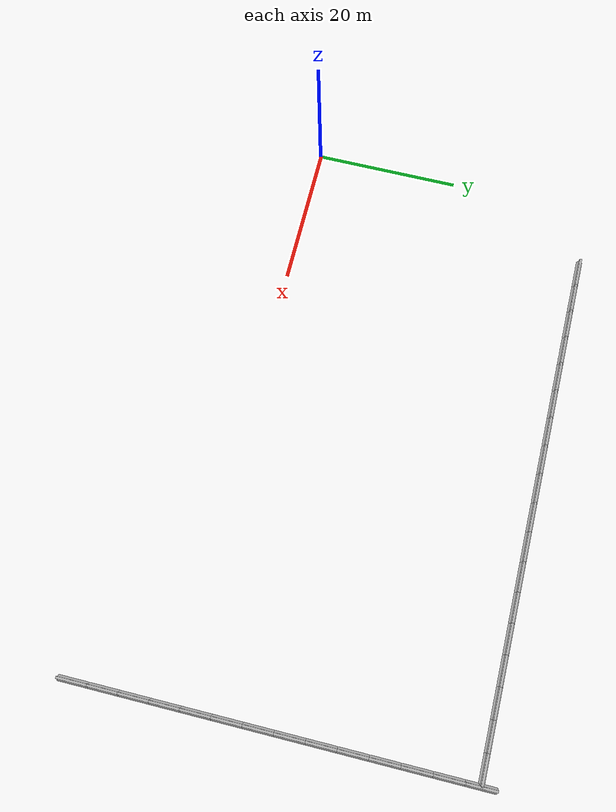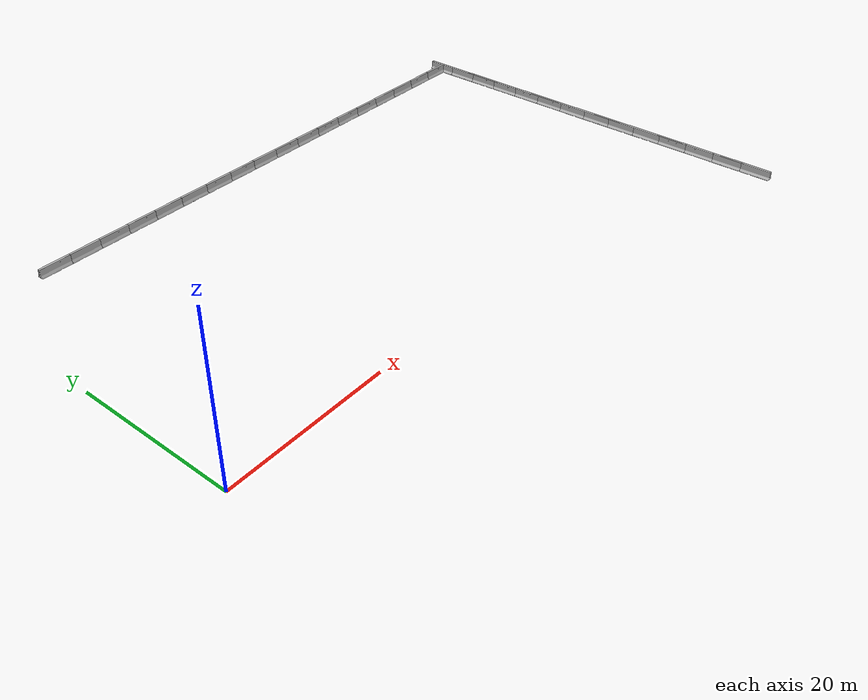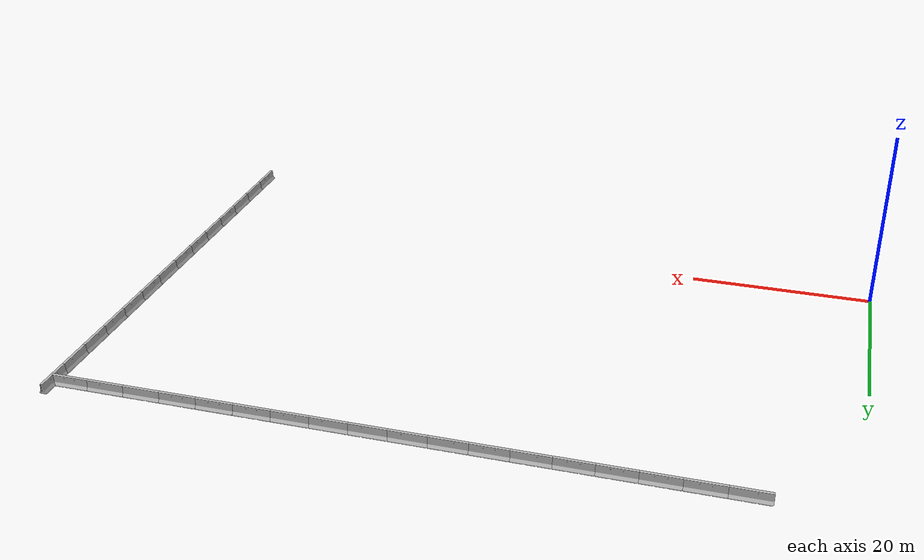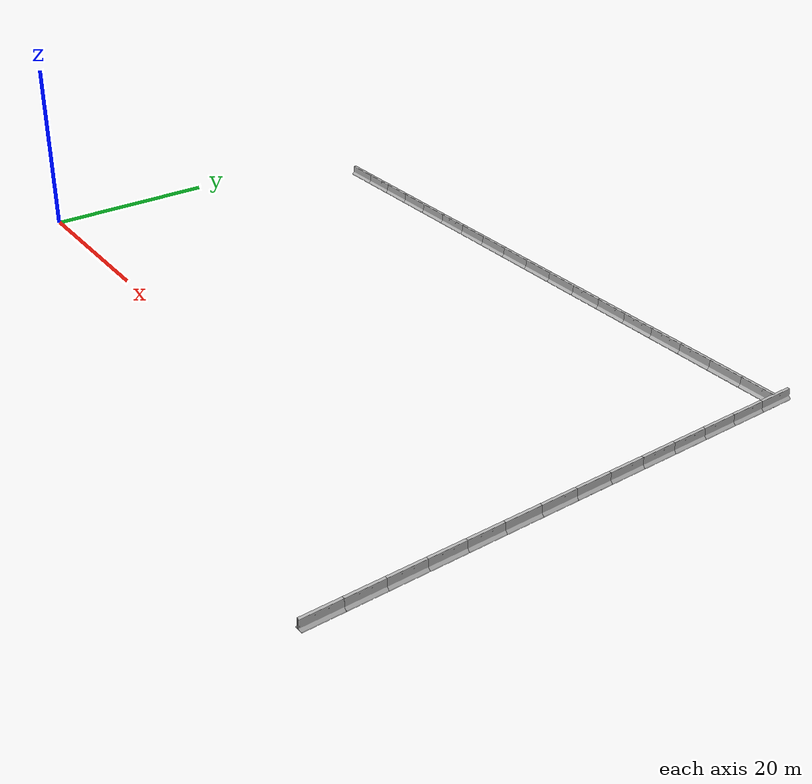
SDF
<sdf version="1.4">
 <world name="default">
  <include><uri>model://sun</uri></include>
  <model name="jersey_barrier">
   <pose>80 0 0 0 0 1.57079632679</pose>
   <static>1</static>
   <link name="link">
    <visual name="visual">
     <geometry><mesh><uri>model://jersey_barrier/meshes/jersey_barrier.dae</uri></mesh></geometry>
    </visual>
    <collision name="upright">
     <pose>0 0 0.5715 0 -0 0</pose>
     <geometry><box><size>4.06542 0.3063 1.143</size></box></geometry>
    </collision>
    <collision name="base">
     <pose>0 0 0.032258 0 -0 0</pose>
     <geometry><box><size>4.06542 0.8107 0.064516</size></box></geometry>
    </collision>
    <collision name="base2">
     <pose>0 0 0.1 0 -0 0</pose>
     <geometry><box><size>4.06542 0.65 0.1</size></box></geometry>
    </collision>
    <collision name="base3">
     <pose>0 0 0.2 0 -0 0</pose>
     <geometry><box><size>4.06542 0.5 0.1</size></box></geometry>
    </collision>
    <collision name="left-angle">
     <pose>0 -0.224 0.2401 0.9 -0 0</pose>
     <geometry><box><size>4.06542 0.5 0.064516</size></box></geometry>
    </collision>
    <collision name="right-angle">
     <pose>0 0.224 0.2401 -0.9 0 0</pose>
     <geometry><box><size>4.06542 0.5 0.064516</size></box></geometry>
    </collision>
    <velocity_decay><linear>0</linear><angular>0</angular></velocity_decay>
   </link>
   <pose>-8 -10 0 0 -0 0</pose>
  </model>
  <model name="jersey_barrier_0">
   <pose>80 4 0 0 0 1.57079632679</pose>
   <static>1</static>
   <link name="link">
    <visual name="visual">
     <geometry><mesh><uri>model://jersey_barrier/meshes/jersey_barrier.dae</uri></mesh></geometry>
    </visual>
    <collision name="upright">
     <pose>0 0 0.5715 0 -0 0</pose>
     <geometry><box><size>4.06542 0.3063 1.143</size></box></geometry>
    </collision>
    <collision name="base">
     <pose>0 0 0.032258 0 -0 0</pose>
     <geometry><box><size>4.06542 0.8107 0.064516</size></box></geometry>
    </collision>
    <collision name="base2">
     <pose>0 0 0.1 0 -0 0</pose>
     <geometry><box><size>4.06542 0.65 0.1</size></box></geometry>
    </collision>
    <collision name="base3">
     <pose>0 0 0.2 0 -0 0</pose>
     <geometry><box><size>4.06542 0.5 0.1</size></box></geometry>
    </collision>
    <collision name="left-angle">
     <pose>0 -0.224 0.2401 0.9 -0 0</pose>
     <geometry><box><size>4.06542 0.5 0.064516</size></box></geometry>
    </collision>
    <collision name="right-angle">
     <pose>0 0.224 0.2401 -0.9 0 0</pose>
     <geometry><box><size>4.06542 0.5 0.064516</size></box></geometry>
    </collision>
    <velocity_decay><linear>0</linear><angular>0</angular></velocity_decay>
   </link>
   <pose>-3 -10 0 0 -0 0</pose>
  </model>
  <model name="jersey_barrier_1">
   <pose>80 8 0 0 0 1.57079632679</pose>
   <static>1</static>
   <link name="link">
    <visual name="visual">
     <geometry><mesh><uri>model://jersey_barrier/meshes/jersey_barrier.dae</uri></mesh></geometry>
    </visual>
    <collision name="upright">
     <pose>0 0 0.5715 0 -0 0</pose>
     <geometry><box><size>4.06542 0.3063 1.143</size></box></geometry>
    </collision>
    <collision name="base">
     <pose>0 0 0.032258 0 -0 0</pose>
     <geometry><box><size>4.06542 0.8107 0.064516</size></box></geometry>
    </collision>
    <collision name="base2">
     <pose>0 0 0.1 0 -0 0</pose>
     <geometry><box><size>4.06542 0.65 0.1</size></box></geometry>
    </collision>
    <collision name="base3">
     <pose>0 0 0.2 0 -0 0</pose>
     <geometry><box><size>4.06542 0.5 0.1</size></box></geometry>
    </collision>
    <collision name="left-angle">
     <pose>0 -0.224 0.2401 0.9 -0 0</pose>
     <geometry><box><size>4.06542 0.5 0.064516</size></box></geometry>
    </collision>
    <collision name="right-angle">
     <pose>0 0.224 0.2401 -0.9 0 0</pose>
     <geometry><box><size>4.06542 0.5 0.064516</size></box></geometry>
    </collision>
    <velocity_decay><linear>0</linear><angular>0</angular></velocity_decay>
   </link>
   <pose>2 -10 0 0 -0 0</pose>
  </model>
  <model name="jersey_barrier_2">
   <pose>80 12 0 0 0 1.57079632679</pose>
   <static>1</static>
   <link name="link">
    <visual name="visual">
     <geometry><mesh><uri>model://jersey_barrier/meshes/jersey_barrier.dae</uri></mesh></geometry>
    </visual>
    <collision name="upright">
     <pose>0 0 0.5715 0 -0 0</pose>
     <geometry><box><size>4.06542 0.3063 1.143</size></box></geometry>
    </collision>
    <collision name="base">
     <pose>0 0 0.032258 0 -0 0</pose>
     <geometry><box><size>4.06542 0.8107 0.064516</size></box></geometry>
    </collision>
    <collision name="base2">
     <pose>0 0 0.1 0 -0 0</pose>
     <geometry><box><size>4.06542 0.65 0.1</size></box></geometry>
    </collision>
    <collision name="base3">
     <pose>0 0 0.2 0 -0 0</pose>
     <geometry><box><size>4.06542 0.5 0.1</size></box></geometry>
    </collision>
    <collision name="left-angle">
     <pose>0 -0.224 0.2401 0.9 -0 0</pose>
     <geometry><box><size>4.06542 0.5 0.064516</size></box></geometry>
    </collision>
    <collision name="right-angle">
     <pose>0 0.224 0.2401 -0.9 0 0</pose>
     <geometry><box><size>4.06542 0.5 0.064516</size></box></geometry>
    </collision>
    <velocity_decay><linear>0</linear><angular>0</angular></velocity_decay>
   </link>
   <pose>7 -10 0 0 -0 0</pose>
  </model>
  <model name="jersey_barrier_3">
   <pose>80 16 0 0 0 1.57079632679</pose>
   <static>1</static>
   <link name="link">
    <visual name="visual">
     <geometry><mesh><uri>model://jersey_barrier/meshes/jersey_barrier.dae</uri></mesh></geometry>
    </visual>
    <collision name="upright">
     <pose>0 0 0.5715 0 -0 0</pose>
     <geometry><box><size>4.06542 0.3063 1.143</size></box></geometry>
    </collision>
    <collision name="base">
     <pose>0 0 0.032258 0 -0 0</pose>
     <geometry><box><size>4.06542 0.8107 0.064516</size></box></geometry>
    </collision>
    <collision name="base2">
     <pose>0 0 0.1 0 -0 0</pose>
     <geometry><box><size>4.06542 0.65 0.1</size></box></geometry>
    </collision>
    <collision name="base3">
     <pose>0 0 0.2 0 -0 0</pose>
     <geometry><box><size>4.06542 0.5 0.1</size></box></geometry>
    </collision>
    <collision name="left-angle">
     <pose>0 -0.224 0.2401 0.9 -0 0</pose>
     <geometry><box><size>4.06542 0.5 0.064516</size></box></geometry>
    </collision>
    <collision name="right-angle">
     <pose>0 0.224 0.2401 -0.9 0 0</pose>
     <geometry><box><size>4.06542 0.5 0.064516</size></box></geometry>
    </collision>
    <velocity_decay><linear>0</linear><angular>0</angular></velocity_decay>
   </link>
   <pose>-7.50675 10 0 0 -0 0</pose>
  </model>
  <model name="jersey_barrier_4">
   <pose>80 20 0 0 0 1.57079632679</pose>
   <static>1</static>
   <link name="link">
    <visual name="visual">
     <geometry><mesh><uri>model://jersey_barrier/meshes/jersey_barrier.dae</uri></mesh></geometry>
    </visual>
    <collision name="upright">
     <pose>0 0 0.5715 0 -0 0</pose>
     <geometry><box><size>4.06542 0.3063 1.143</size></box></geometry>
    </collision>
    <collision name="base">
     <pose>0 0 0.032258 0 -0 0</pose>
     <geometry><box><size>4.06542 0.8107 0.064516</size></box></geometry>
    </collision>
    <collision name="base2">
     <pose>0 0 0.1 0 -0 0</pose>
     <geometry><box><size>4.06542 0.65 0.1</size></box></geometry>
    </collision>
    <collision name="base3">
     <pose>0 0 0.2 0 -0 0</pose>
     <geometry><box><size>4.06542 0.5 0.1</size></box></geometry>
    </collision>
    <collision name="left-angle">
     <pose>0 -0.224 0.2401 0.9 -0 0</pose>
     <geometry><box><size>4.06542 0.5 0.064516</size></box></geometry>
    </collision>
    <collision name="right-angle">
     <pose>0 0.224 0.2401 -0.9 0 0</pose>
     <geometry><box><size>4.06542 0.5 0.064516</size></box></geometry>
    </collision>
    <velocity_decay><linear>0</linear><angular>0</angular></velocity_decay>
   </link>
   <pose>-2 10 0 0 -0 0</pose>
  </model>
  <model name="jersey_barrier_5">
   <pose>80 24 0 0 0 1.57079632679</pose>
   <static>1</static>
   <link name="link">
    <visual name="visual">
     <geometry><mesh><uri>model://jersey_barrier/meshes/jersey_barrier.dae</uri></mesh></geometry>
    </visual>
    <collision name="upright">
     <pose>0 0 0.5715 0 -0 0</pose>
     <geometry><box><size>4.06542 0.3063 1.143</size></box></geometry>
    </collision>
    <collision name="base">
     <pose>0 0 0.032258 0 -0 0</pose>
     <geometry><box><size>4.06542 0.8107 0.064516</size></box></geometry>
    </collision>
    <collision name="base2">
     <pose>0 0 0.1 0 -0 0</pose>
     <geometry><box><size>4.06542 0.65 0.1</size></box></geometry>
    </collision>
    <collision name="base3">
     <pose>0 0 0.2 0 -0 0</pose>
     <geometry><box><size>4.06542 0.5 0.1</size></box></geometry>
    </collision>
    <collision name="left-angle">
     <pose>0 -0.224 0.2401 0.9 -0 0</pose>
     <geometry><box><size>4.06542 0.5 0.064516</size></box></geometry>
    </collision>
    <collision name="right-angle">
     <pose>0 0.224 0.2401 -0.9 0 0</pose>
     <geometry><box><size>4.06542 0.5 0.064516</size></box></geometry>
    </collision>
    <velocity_decay><linear>0</linear><angular>0</angular></velocity_decay>
   </link>
   <pose>3 10 0 0 -0 0</pose>
  </model>
  <model name="jersey_barrier_6">
   <pose>80 28 0 0 0 1.57079632679</pose>
   <static>1</static>
   <link name="link">
    <visual name="visual">
     <geometry><mesh><uri>model://jersey_barrier/meshes/jersey_barrier.dae</uri></mesh></geometry>
    </visual>
    <collision name="upright">
     <pose>0 0 0.5715 0 -0 0</pose>
     <geometry><box><size>4.06542 0.3063 1.143</size></box></geometry>
    </collision>
    <collision name="base">
     <pose>0 0 0.032258 0 -0 0</pose>
     <geometry><box><size>4.06542 0.8107 0.064516</size></box></geometry>
    </collision>
    <collision name="base2">
     <pose>0 0 0.1 0 -0 0</pose>
     <geometry><box><size>4.06542 0.65 0.1</size></box></geometry>
    </collision>
    <collision name="base3">
     <pose>0 0 0.2 0 -0 0</pose>
     <geometry><box><size>4.06542 0.5 0.1</size></box></geometry>
    </collision>
    <collision name="left-angle">
     <pose>0 -0.224 0.2401 0.9 -0 0</pose>
     <geometry><box><size>4.06542 0.5 0.064516</size></box></geometry>
    </collision>
    <collision name="right-angle">
     <pose>0 0.224 0.2401 -0.9 0 0</pose>
     <geometry><box><size>4.06542 0.5 0.064516</size></box></geometry>
    </collision>
    <velocity_decay><linear>0</linear><angular>0</angular></velocity_decay>
   </link>
   <pose>8 10 0 0 -0 0</pose>
  </model>
  <model name="jersey_barrier_7">
   <pose>80 32 0 0 0 1.57079632679</pose>
   <static>1</static>
   <link name="link">
    <visual name="visual">
     <geometry><mesh><uri>model://jersey_barrier/meshes/jersey_barrier.dae</uri></mesh></geometry>
    </visual>
    <collision name="upright">
     <pose>0 0 0.5715 0 -0 0</pose>
     <geometry><box><size>4.06542 0.3063 1.143</size></box></geometry>
    </collision>
    <collision name="base">
     <pose>0 0 0.032258 0 -0 0</pose>
     <geometry><box><size>4.06542 0.8107 0.064516</size></box></geometry>
    </collision>
    <collision name="base2">
     <pose>0 0 0.1 0 -0 0</pose>
     <geometry><box><size>4.06542 0.65 0.1</size></box></geometry>
    </collision>
    <collision name="base3">
     <pose>0 0 0.2 0 -0 0</pose>
     <geometry><box><size>4.06542 0.5 0.1</size></box></geometry>
    </collision>
    <collision name="left-angle">
     <pose>0 -0.224 0.2401 0.9 -0 0</pose>
     <geometry><box><size>4.06542 0.5 0.064516</size></box></geometry>
    </collision>
    <collision name="right-angle">
     <pose>0 0.224 0.2401 -0.9 0 0</pose>
     <geometry><box><size>4.06542 0.5 0.064516</size></box></geometry>
    </collision>
    <velocity_decay><linear>0</linear><angular>0</angular></velocity_decay>
   </link>
   <pose>9 -4 0 0 -0 0</pose>
  </model>
  <model name="jersey_barrier_8">
   <pose>80 36 0 0 0 1.57079632679</pose>
   <static>1</static>
   <link name="link">
    <visual name="visual">
     <geometry><mesh><uri>model://jersey_barrier/meshes/jersey_barrier.dae</uri></mesh></geometry>
    </visual>
    <collision name="upright">
     <pose>0 0 0.5715 0 -0 0</pose>
     <geometry><box><size>4.06542 0.3063 1.143</size></box></geometry>
    </collision>
    <collision name="base">
     <pose>0 0 0.032258 0 -0 0</pose>
     <geometry><box><size>4.06542 0.8107 0.064516</size></box></geometry>
    </collision>
    <collision name="base2">
     <pose>0 0 0.1 0 -0 0</pose>
     <geometry><box><size>4.06542 0.65 0.1</size></box></geometry>
    </collision>
    <collision name="base3">
     <pose>0 0 0.2 0 -0 0</pose>
     <geometry><box><size>4.06542 0.5 0.1</size></box></geometry>
    </collision>
    <collision name="left-angle">
     <pose>0 -0.224 0.2401 0.9 -0 0</pose>
     <geometry><box><size>4.06542 0.5 0.064516</size></box></geometry>
    </collision>
    <collision name="right-angle">
     <pose>0 0.224 0.2401 -0.9 0 0</pose>
     <geometry><box><size>4.06542 0.5 0.064516</size></box></geometry>
    </collision>
    <velocity_decay><linear>0</linear><angular>0</angular></velocity_decay>
   </link>
   <pose>9 3 0 0 -0 0</pose>
  </model>
  <model name="jersey_barrier_9">
   <pose>80 40 0 0 0 1.57079632679</pose>
   <static>1</static>
   <link name="link">
    <visual name="visual">
     <geometry><mesh><uri>model://jersey_barrier/meshes/jersey_barrier.dae</uri></mesh></geometry>
    </visual>
    <collision name="upright">
     <pose>0 0 0.5715 0 -0 0</pose>
     <geometry><box><size>4.06542 0.3063 1.143</size></box></geometry>
    </collision>
    <collision name="base">
     <pose>0 0 0.032258 0 -0 0</pose>
     <geometry><box><size>4.06542 0.8107 0.064516</size></box></geometry>
    </collision>
    <collision name="base2">
     <pose>0 0 0.1 0 -0 0</pose>
     <geometry><box><size>4.06542 0.65 0.1</size></box></geometry>
    </collision>
    <collision name="base3">
     <pose>0 0 0.2 0 -0 0</pose>
     <geometry><box><size>4.06542 0.5 0.1</size></box></geometry>
    </collision>
    <collision name="left-angle">
     <pose>0 -0.224 0.2401 0.9 -0 0</pose>
     <geometry><box><size>4.06542 0.5 0.064516</size></box></geometry>
    </collision>
    <collision name="right-angle">
     <pose>0 0.224 0.2401 -0.9 0 0</pose>
     <geometry><box><size>4.06542 0.5 0.064516</size></box></geometry>
    </collision>
    <velocity_decay><linear>0</linear><angular>0</angular></velocity_decay>
   </link>
   <pose>-9 -6.56962 0 0 -0 0</pose>
  </model>
  <model name="jersey_barrier_10">
   <pose>78 40 0 0 0 0</pose>
   <static>1</static>
   <link name="link">
    <visual name="visual">
     <geometry><mesh><uri>model://jersey_barrier/meshes/jersey_barrier.dae</uri></mesh></geometry>
    </visual>
    <collision name="upright">
     <pose>0 0 0.5715 0 -0 0</pose>
     <geometry><box><size>4.06542 0.3063 1.143</size></box></geometry>
    </collision>
    <collision name="base">
     <pose>0 0 0.032258 0 -0 0</pose>
     <geometry><box><size>4.06542 0.8107 0.064516</size></box></geometry>
    </collision>
    <collision name="base2">
     <pose>0 0 0.1 0 -0 0</pose>
     <geometry><box><size>4.06542 0.65 0.1</size></box></geometry>
    </collision>
    <collision name="base3">
     <pose>0 0 0.2 0 -0 0</pose>
     <geometry><box><size>4.06542 0.5 0.1</size></box></geometry>
    </collision>
    <collision name="left-angle">
     <pose>0 -0.224 0.2401 0.9 -0 0</pose>
     <geometry><box><size>4.06542 0.5 0.064516</size></box></geometry>
    </collision>
    <collision name="right-angle">
     <pose>0 0.224 0.2401 -0.9 0 0</pose>
     <geometry><box><size>4.06542 0.5 0.064516</size></box></geometry>
    </collision>
    <velocity_decay><linear>0</linear><angular>0</angular></velocity_decay>
   </link>
   <pose>-10 -2 0 0 -0 0</pose>
  </model>
  <model name="jersey_barrier_11">
   <pose>74 40 0 0 0 0</pose>
   <static>1</static>
   <link name="link">
    <visual name="visual">
     <geometry><mesh><uri>model://jersey_barrier/meshes/jersey_barrier.dae</uri></mesh></geometry>
    </visual>
    <collision name="upright">
     <pose>0 0 0.5715 0 -0 0</pose>
     <geometry><box><size>4.06542 0.3063 1.143</size></box></geometry>
    </collision>
    <collision name="base">
     <pose>0 0 0.032258 0 -0 0</pose>
     <geometry><box><size>4.06542 0.8107 0.064516</size></box></geometry>
    </collision>
    <collision name="base2">
     <pose>0 0 0.1 0 -0 0</pose>
     <geometry><box><size>4.06542 0.65 0.1</size></box></geometry>
    </collision>
    <collision name="base3">
     <pose>0 0 0.2 0 -0 0</pose>
     <geometry><box><size>4.06542 0.5 0.1</size></box></geometry>
    </collision>
    <collision name="left-angle">
     <pose>0 -0.224 0.2401 0.9 -0 0</pose>
     <geometry><box><size>4.06542 0.5 0.064516</size></box></geometry>
    </collision>
    <collision name="right-angle">
     <pose>0 0.224 0.2401 -0.9 0 0</pose>
     <geometry><box><size>4.06542 0.5 0.064516</size></box></geometry>
    </collision>
    <velocity_decay><linear>0</linear><angular>0</angular></velocity_decay>
   </link>
   <pose>-9.55113 3 0 0 -0 0</pose>
  </model>
  <model name="jersey_barrier_12">
   <pose>70 40 0 0 0 0</pose>
   <static>1</static>
   <link name="link">
    <visual name="visual">
     <geometry><mesh><uri>model://jersey_barrier/meshes/jersey_barrier.dae</uri></mesh></geometry>
    </visual>
    <collision name="upright">
     <pose>0 0 0.5715 0 -0 0</pose>
     <geometry><box><size>4.06542 0.3063 1.143</size></box></geometry>
    </collision>
    <collision name="base">
     <pose>0 0 0.032258 0 -0 0</pose>
     <geometry><box><size>4.06542 0.8107 0.064516</size></box></geometry>
    </collision>
    <collision name="base2">
     <pose>0 0 0.1 0 -0 0</pose>
     <geometry><box><size>4.06542 0.65 0.1</size></box></geometry>
    </collision>
    <collision name="base3">
     <pose>0 0 0.2 0 -0 0</pose>
     <geometry><box><size>4.06542 0.5 0.1</size></box></geometry>
    </collision>
    <collision name="left-angle">
     <pose>0 -0.224 0.2401 0.9 -0 0</pose>
     <geometry><box><size>4.06542 0.5 0.064516</size></box></geometry>
    </collision>
    <collision name="right-angle">
     <pose>0 0.224 0.2401 -0.9 0 0</pose>
     <geometry><box><size>4.06542 0.5 0.064516</size></box></geometry>
    </collision>
    <velocity_decay><linear>0</linear><angular>0</angular></velocity_decay>
   </link>
   <pose>9 -8 0 0 -0 0</pose>
  </model>
  <model name="jersey_barrier_13">
   <pose>66 40 0 0 0 0</pose>
   <static>1</static>
   <link name="link">
    <visual name="visual">
     <geometry><mesh><uri>model://jersey_barrier/meshes/jersey_barrier.dae</uri></mesh></geometry>
    </visual>
    <collision name="upright">
     <pose>0 0 0.5715 0 -0 0</pose>
     <geometry><box><size>4.06542 0.3063 1.143</size></box></geometry>
    </collision>
    <collision name="base">
     <pose>0 0 0.032258 0 -0 0</pose>
     <geometry><box><size>4.06542 0.8107 0.064516</size></box></geometry>
    </collision>
    <collision name="base2">
     <pose>0 0 0.1 0 -0 0</pose>
     <geometry><box><size>4.06542 0.65 0.1</size></box></geometry>
    </collision>
    <collision name="base3">
     <pose>0 0 0.2 0 -0 0</pose>
     <geometry><box><size>4.06542 0.5 0.1</size></box></geometry>
    </collision>
    <collision name="left-angle">
     <pose>0 -0.224 0.2401 0.9 -0 0</pose>
     <geometry><box><size>4.06542 0.5 0.064516</size></box></geometry>
    </collision>
    <collision name="right-angle">
     <pose>0 0.224 0.2401 -0.9 0 0</pose>
     <geometry><box><size>4.06542 0.5 0.064516</size></box></geometry>
    </collision>
    <velocity_decay><linear>0</linear><angular>0</angular></velocity_decay>
   </link>
   <pose>10 7 0 0 -0 0</pose>
  </model>
  <model name="jersey_barrier_14">
   <pose>62 40 0 0 0 0</pose>
   <static>1</static>
   <link name="link">
    <visual name="visual">
     <geometry><mesh><uri>model://jersey_barrier/meshes/jersey_barrier.dae</uri></mesh></geometry>
    </visual>
    <collision name="upright">
     <pose>0 0 0.5715 0 -0 0</pose>
     <geometry><box><size>4.06542 0.3063 1.143</size></box></geometry>
    </collision>
    <collision name="base">
     <pose>0 0 0.032258 0 -0 0</pose>
     <geometry><box><size>4.06542 0.8107 0.064516</size></box></geometry>
    </collision>
    <collision name="base2">
     <pose>0 0 0.1 0 -0 0</pose>
     <geometry><box><size>4.06542 0.65 0.1</size></box></geometry>
    </collision>
    <collision name="base3">
     <pose>0 0 0.2 0 -0 0</pose>
     <geometry><box><size>4.06542 0.5 0.1</size></box></geometry>
    </collision>
    <collision name="left-angle">
     <pose>0 -0.224 0.2401 0.9 -0 0</pose>
     <geometry><box><size>4.06542 0.5 0.064516</size></box></geometry>
    </collision>
    <collision name="right-angle">
     <pose>0 0.224 0.2401 -0.9 0 0</pose>
     <geometry><box><size>4.06542 0.5 0.064516</size></box></geometry>
    </collision>
    <velocity_decay><linear>0</linear><angular>0</angular></velocity_decay>
   </link>
   <pose>-9 7.4858 0 0 -0 0</pose>
  </model>
  <model name="jersey_barrier_15">
   <pose>58 40 0 0 0 0</pose>
   <static>1</static>
   <link name="link">
    <visual name="visual">
     <geometry><mesh><uri>model://jersey_barrier/meshes/jersey_barrier.dae</uri></mesh></geometry>
    </visual>
    <collision name="upright">
     <pose>0 0 0.5715 0 -0 0</pose>
     <geometry><box><size>4.06542 0.3063 1.143</size></box></geometry>
    </collision>
    <collision name="base">
     <pose>0 0 0.032258 0 -0 0</pose>
     <geometry><box><size>4.06542 0.8107 0.064516</size></box></geometry>
    </collision>
    <collision name="base2">
     <pose>0 0 0.1 0 -0 0</pose>
     <geometry><box><size>4.06542 0.65 0.1</size></box></geometry>
    </collision>
    <collision name="base3">
     <pose>0 0 0.2 0 -0 0</pose>
     <geometry><box><size>4.06542 0.5 0.1</size></box></geometry>
    </collision>
    <collision name="left-angle">
     <pose>0 -0.224 0.2401 0.9 -0 0</pose>
     <geometry><box><size>4.06542 0.5 0.064516</size></box></geometry>
    </collision>
    <collision name="right-angle">
     <pose>0 0.224 0.2401 -0.9 0 0</pose>
     <geometry><box><size>4.06542 0.5 0.064516</size></box></geometry>
    </collision>
    <velocity_decay><linear>0</linear><angular>0</angular></velocity_decay>
   </link>
   <pose>2.45495 0 0 0 -0 0</pose>
  </model>
  <model name="jersey_barrier_16">
   <pose>54 40 0 0 0 0</pose>
   <static>1</static>
   <link name="link">
    <visual name="visual">
     <geometry><mesh><uri>model://jersey_barrier/meshes/jersey_barrier.dae</uri></mesh></geometry>
    </visual>
    <collision name="upright">
     <pose>0 0 0.5715 0 -0 0</pose>
     <geometry><box><size>4.06542 0.3063 1.143</size></box></geometry>
    </collision>
    <collision name="base">
     <pose>0 0 0.032258 0 -0 0</pose>
     <geometry><box><size>4.06542 0.8107 0.064516</size></box></geometry>
    </collision>
    <collision name="base2">
     <pose>0 0 0.1 0 -0 0</pose>
     <geometry><box><size>4.06542 0.65 0.1</size></box></geometry>
    </collision>
    <collision name="base3">
     <pose>0 0 0.2 0 -0 0</pose>
     <geometry><box><size>4.06542 0.5 0.1</size></box></geometry>
    </collision>
    <collision name="left-angle">
     <pose>0 -0.224 0.2401 0.9 -0 0</pose>
     <geometry><box><size>4.06542 0.5 0.064516</size></box></geometry>
    </collision>
    <collision name="right-angle">
     <pose>0 0.224 0.2401 -0.9 0 0</pose>
     <geometry><box><size>4.06542 0.5 0.064516</size></box></geometry>
    </collision>
    <velocity_decay><linear>0</linear><angular>0</angular></velocity_decay>
   </link>
   <pose>2.45495 0 0 0 -0 0</pose>
  </model>
  <model name="jersey_barrier_17">
   <pose>50 40 0 0 0 0</pose>
   <static>1</static>
   <link name="link">
    <visual name="visual">
     <geometry><mesh><uri>model://jersey_barrier/meshes/jersey_barrier.dae</uri></mesh></geometry>
    </visual>
    <collision name="upright">
     <pose>0 0 0.5715 0 -0 0</pose>
     <geometry><box><size>4.06542 0.3063 1.143</size></box></geometry>
    </collision>
    <collision name="base">
     <pose>0 0 0.032258 0 -0 0</pose>
     <geometry><box><size>4.06542 0.8107 0.064516</size></box></geometry>
    </collision>
    <collision name="base2">
     <pose>0 0 0.1 0 -0 0</pose>
     <geometry><box><size>4.06542 0.65 0.1</size></box></geometry>
    </collision>
    <collision name="base3">
     <pose>0 0 0.2 0 -0 0</pose>
     <geometry><box><size>4.06542 0.5 0.1</size></box></geometry>
    </collision>
    <collision name="left-angle">
     <pose>0 -0.224 0.2401 0.9 -0 0</pose>
     <geometry><box><size>4.06542 0.5 0.064516</size></box></geometry>
    </collision>
    <collision name="right-angle">
     <pose>0 0.224 0.2401 -0.9 0 0</pose>
     <geometry><box><size>4.06542 0.5 0.064516</size></box></geometry>
    </collision>
    <velocity_decay><linear>0</linear><angular>0</angular></velocity_decay>
   </link>
   <pose>-10 -2 0 0 -0 0</pose>
  </model>
  <model name="jersey_barrier_18">
   <pose>46 40 0 0 0 0</pose>
   <static>1</static>
   <link name="link">
    <visual name="visual">
     <geometry><mesh><uri>model://jersey_barrier/meshes/jersey_barrier.dae</uri></mesh></geometry>
    </visual>
    <collision name="upright">
     <pose>0 0 0.5715 0 -0 0</pose>
     <geometry><box><size>4.06542 0.3063 1.143</size></box></geometry>
    </collision>
    <collision name="base">
     <pose>0 0 0.032258 0 -0 0</pose>
     <geometry><box><size>4.06542 0.8107 0.064516</size></box></geometry>
    </collision>
    <collision name="base2">
     <pose>0 0 0.1 0 -0 0</pose>
     <geometry><box><size>4.06542 0.65 0.1</size></box></geometry>
    </collision>
    <collision name="base3">
     <pose>0 0 0.2 0 -0 0</pose>
     <geometry><box><size>4.06542 0.5 0.1</size></box></geometry>
    </collision>
    <collision name="left-angle">
     <pose>0 -0.224 0.2401 0.9 -0 0</pose>
     <geometry><box><size>4.06542 0.5 0.064516</size></box></geometry>
    </collision>
    <collision name="right-angle">
     <pose>0 0.224 0.2401 -0.9 0 0</pose>
     <geometry><box><size>4.06542 0.5 0.064516</size></box></geometry>
    </collision>
    <velocity_decay><linear>0</linear><angular>0</angular></velocity_decay>
   </link>
   <pose>-9.55113 3 0 0 -0 0</pose>
  </model>
  <model name="jersey_barrier_19">
   <pose>42 40 0 0 0 0</pose>
   <static>1</static>
   <link name="link">
    <visual name="visual">
     <geometry><mesh><uri>model://jersey_barrier/meshes/jersey_barrier.dae</uri></mesh></geometry>
    </visual>
    <collision name="upright">
     <pose>0 0 0.5715 0 -0 0</pose>
     <geometry><box><size>4.06542 0.3063 1.143</size></box></geometry>
    </collision>
    <collision name="base">
     <pose>0 0 0.032258 0 -0 0</pose>
     <geometry><box><size>4.06542 0.8107 0.064516</size></box></geometry>
    </collision>
    <collision name="base2">
     <pose>0 0 0.1 0 -0 0</pose>
     <geometry><box><size>4.06542 0.65 0.1</size></box></geometry>
    </collision>
    <collision name="base3">
     <pose>0 0 0.2 0 -0 0</pose>
     <geometry><box><size>4.06542 0.5 0.1</size></box></geometry>
    </collision>
    <collision name="left-angle">
     <pose>0 -0.224 0.2401 0.9 -0 0</pose>
     <geometry><box><size>4.06542 0.5 0.064516</size></box></geometry>
    </collision>
    <collision name="right-angle">
     <pose>0 0.224 0.2401 -0.9 0 0</pose>
     <geometry><box><size>4.06542 0.5 0.064516</size></box></geometry>
    </collision>
    <velocity_decay><linear>0</linear><angular>0</angular></velocity_decay>
   </link>
   <pose>9 -8 0 0 -0 0</pose>
  </model>
  <model name="jersey_barrier_20">
   <pose>38 40 0 0 0 0</pose>
   <static>1</static>
   <link name="link">
    <visual name="visual">
     <geometry><mesh><uri>model://jersey_barrier/meshes/jersey_barrier.dae</uri></mesh></geometry>
    </visual>
    <collision name="upright">
     <pose>0 0 0.5715 0 -0 0</pose>
     <geometry><box><size>4.06542 0.3063 1.143</size></box></geometry>
    </collision>
    <collision name="base">
     <pose>0 0 0.032258 0 -0 0</pose>
     <geometry><box><size>4.06542 0.8107 0.064516</size></box></geometry>
    </collision>
    <collision name="base2">
     <pose>0 0 0.1 0 -0 0</pose>
     <geometry><box><size>4.06542 0.65 0.1</size></box></geometry>
    </collision>
    <collision name="base3">
     <pose>0 0 0.2 0 -0 0</pose>
     <geometry><box><size>4.06542 0.5 0.1</size></box></geometry>
    </collision>
    <collision name="left-angle">
     <pose>0 -0.224 0.2401 0.9 -0 0</pose>
     <geometry><box><size>4.06542 0.5 0.064516</size></box></geometry>
    </collision>
    <collision name="right-angle">
     <pose>0 0.224 0.2401 -0.9 0 0</pose>
     <geometry><box><size>4.06542 0.5 0.064516</size></box></geometry>
    </collision>
    <velocity_decay><linear>0</linear><angular>0</angular></velocity_decay>
   </link>
   <pose>10 7 0 0 -0 0</pose>
  </model>
  <model name="jersey_barrier_21">
   <pose>34 40 0 0 0 0</pose>
   <static>1</static>
   <link name="link">
    <visual name="visual">
     <geometry><mesh><uri>model://jersey_barrier/meshes/jersey_barrier.dae</uri></mesh></geometry>
    </visual>
    <collision name="upright">
     <pose>0 0 0.5715 0 -0 0</pose>
     <geometry><box><size>4.06542 0.3063 1.143</size></box></geometry>
    </collision>
    <collision name="base">
     <pose>0 0 0.032258 0 -0 0</pose>
     <geometry><box><size>4.06542 0.8107 0.064516</size></box></geometry>
    </collision>
    <collision name="base2">
     <pose>0 0 0.1 0 -0 0</pose>
     <geometry><box><size>4.06542 0.65 0.1</size></box></geometry>
    </collision>
    <collision name="base3">
     <pose>0 0 0.2 0 -0 0</pose>
     <geometry><box><size>4.06542 0.5 0.1</size></box></geometry>
    </collision>
    <collision name="left-angle">
     <pose>0 -0.224 0.2401 0.9 -0 0</pose>
     <geometry><box><size>4.06542 0.5 0.064516</size></box></geometry>
    </collision>
    <collision name="right-angle">
     <pose>0 0.224 0.2401 -0.9 0 0</pose>
     <geometry><box><size>4.06542 0.5 0.064516</size></box></geometry>
    </collision>
    <velocity_decay><linear>0</linear><angular>0</angular></velocity_decay>
   </link>
   <pose>-9 7.4858 0 0 -0 0</pose>
  </model>
  <model name="jersey_barrier_22">
   <pose>30 40 0 0 0 0</pose>
   <static>1</static>
   <link name="link">
    <visual name="visual">
     <geometry><mesh><uri>model://jersey_barrier/meshes/jersey_barrier.dae</uri></mesh></geometry>
    </visual>
    <collision name="upright">
     <pose>0 0 0.5715 0 -0 0</pose>
     <geometry><box><size>4.06542 0.3063 1.143</size></box></geometry>
    </collision>
    <collision name="base">
     <pose>0 0 0.032258 0 -0 0</pose>
     <geometry><box><size>4.06542 0.8107 0.064516</size></box></geometry>
    </collision>
    <collision name="base2">
     <pose>0 0 0.1 0 -0 0</pose>
     <geometry><box><size>4.06542 0.65 0.1</size></box></geometry>
    </collision>
    <collision name="base3">
     <pose>0 0 0.2 0 -0 0</pose>
     <geometry><box><size>4.06542 0.5 0.1</size></box></geometry>
    </collision>
    <collision name="left-angle">
     <pose>0 -0.224 0.2401 0.9 -0 0</pose>
     <geometry><box><size>4.06542 0.5 0.064516</size></box></geometry>
    </collision>
    <collision name="right-angle">
     <pose>0 0.224 0.2401 -0.9 0 0</pose>
     <geometry><box><size>4.06542 0.5 0.064516</size></box></geometry>
    </collision>
    <velocity_decay><linear>0</linear><angular>0</angular></velocity_decay>
   </link>
   <pose>2.45495 0 0 0 -0 0</pose>
  </model>
  <model name="jersey_barrier_23">
   <pose>26 40 0 0 0 0</pose>
   <static>1</static>
   <link name="link">
    <visual name="visual">
     <geometry><mesh><uri>model://jersey_barrier/meshes/jersey_barrier.dae</uri></mesh></geometry>
    </visual>
    <collision name="upright">
     <pose>0 0 0.5715 0 -0 0</pose>
     <geometry><box><size>4.06542 0.3063 1.143</size></box></geometry>
    </collision>
    <collision name="base">
     <pose>0 0 0.032258 0 -0 0</pose>
     <geometry><box><size>4.06542 0.8107 0.064516</size></box></geometry>
    </collision>
    <collision name="base2">
     <pose>0 0 0.1 0 -0 0</pose>
     <geometry><box><size>4.06542 0.65 0.1</size></box></geometry>
    </collision>
    <collision name="base3">
     <pose>0 0 0.2 0 -0 0</pose>
     <geometry><box><size>4.06542 0.5 0.1</size></box></geometry>
    </collision>
    <collision name="left-angle">
     <pose>0 -0.224 0.2401 0.9 -0 0</pose>
     <geometry><box><size>4.06542 0.5 0.064516</size></box></geometry>
    </collision>
    <collision name="right-angle">
     <pose>0 0.224 0.2401 -0.9 0 0</pose>
     <geometry><box><size>4.06542 0.5 0.064516</size></box></geometry>
    </collision>
    <velocity_decay><linear>0</linear><angular>0</angular></velocity_decay>
   </link>
   <pose>2.45495 0 0 0 -0 0</pose>
  </model>
  <model name="jersey_barrier_24">
   <pose>22 40 0 0 0 0</pose>
   <static>1</static>
   <link name="link">
    <visual name="visual">
     <geometry><mesh><uri>model://jersey_barrier/meshes/jersey_barrier.dae</uri></mesh></geometry>
    </visual>
    <collision name="upright">
     <pose>0 0 0.5715 0 -0 0</pose>
     <geometry><box><size>4.06542 0.3063 1.143</size></box></geometry>
    </collision>
    <collision name="base">
     <pose>0 0 0.032258 0 -0 0</pose>
     <geometry><box><size>4.06542 0.8107 0.064516</size></box></geometry>
    </collision>
    <collision name="base2">
     <pose>0 0 0.1 0 -0 0</pose>
     <geometry><box><size>4.06542 0.65 0.1</size></box></geometry>
    </collision>
    <collision name="base3">
     <pose>0 0 0.2 0 -0 0</pose>
     <geometry><box><size>4.06542 0.5 0.1</size></box></geometry>
    </collision>
    <collision name="left-angle">
     <pose>0 -0.224 0.2401 0.9 -0 0</pose>
     <geometry><box><size>4.06542 0.5 0.064516</size></box></geometry>
    </collision>
    <collision name="right-angle">
     <pose>0 0.224 0.2401 -0.9 0 0</pose>
     <geometry><box><size>4.06542 0.5 0.064516</size></box></geometry>
    </collision>
    <velocity_decay><linear>0</linear><angular>0</angular></velocity_decay>
   </link>
   <pose>-10 -2 0 0 -0 0</pose>
  </model>
  <model name="jersey_barrier_25">
   <pose>18 40 0 0 0 0</pose>
   <static>1</static>
   <link name="link">
    <visual name="visual">
     <geometry><mesh><uri>model://jersey_barrier/meshes/jersey_barrier.dae</uri></mesh></geometry>
    </visual>
    <collision name="upright">
     <pose>0 0 0.5715 0 -0 0</pose>
     <geometry><box><size>4.06542 0.3063 1.143</size></box></geometry>
    </collision>
    <collision name="base">
     <pose>0 0 0.032258 0 -0 0</pose>
     <geometry><box><size>4.06542 0.8107 0.064516</size></box></geometry>
    </collision>
    <collision name="base2">
     <pose>0 0 0.1 0 -0 0</pose>
     <geometry><box><size>4.06542 0.65 0.1</size></box></geometry>
    </collision>
    <collision name="base3">
     <pose>0 0 0.2 0 -0 0</pose>
     <geometry><box><size>4.06542 0.5 0.1</size></box></geometry>
    </collision>
    <collision name="left-angle">
     <pose>0 -0.224 0.2401 0.9 -0 0</pose>
     <geometry><box><size>4.06542 0.5 0.064516</size></box></geometry>
    </collision>
    <collision name="right-angle">
     <pose>0 0.224 0.2401 -0.9 0 0</pose>
     <geometry><box><size>4.06542 0.5 0.064516</size></box></geometry>
    </collision>
    <velocity_decay><linear>0</linear><angular>0</angular></velocity_decay>
   </link>
   <pose>-9.55113 3 0 0 -0 0</pose>
  </model>
  <model name="jersey_barrier_26">
   <pose>14 40 0 0 0 0</pose>
   <static>1</static>
   <link name="link">
    <visual name="visual">
     <geometry><mesh><uri>model://jersey_barrier/meshes/jersey_barrier.dae</uri></mesh></geometry>
    </visual>
    <collision name="upright">
     <pose>0 0 0.5715 0 -0 0</pose>
     <geometry><box><size>4.06542 0.3063 1.143</size></box></geometry>
    </collision>
    <collision name="base">
     <pose>0 0 0.032258 0 -0 0</pose>
     <geometry><box><size>4.06542 0.8107 0.064516</size></box></geometry>
    </collision>
    <collision name="base2">
     <pose>0 0 0.1 0 -0 0</pose>
     <geometry><box><size>4.06542 0.65 0.1</size></box></geometry>
    </collision>
    <collision name="base3">
     <pose>0 0 0.2 0 -0 0</pose>
     <geometry><box><size>4.06542 0.5 0.1</size></box></geometry>
    </collision>
    <collision name="left-angle">
     <pose>0 -0.224 0.2401 0.9 -0 0</pose>
     <geometry><box><size>4.06542 0.5 0.064516</size></box></geometry>
    </collision>
    <collision name="right-angle">
     <pose>0 0.224 0.2401 -0.9 0 0</pose>
     <geometry><box><size>4.06542 0.5 0.064516</size></box></geometry>
    </collision>
    <velocity_decay><linear>0</linear><angular>0</angular></velocity_decay>
   </link>
   <pose>9 -8 0 0 -0 0</pose>
  </model>
  <model name="jersey_barrier_27">
   <pose>10 40 0 0 0 0</pose>
   <static>1</static>
   <link name="link">
    <visual name="visual">
     <geometry><mesh><uri>model://jersey_barrier/meshes/jersey_barrier.dae</uri></mesh></geometry>
    </visual>
    <collision name="upright">
     <pose>0 0 0.5715 0 -0 0</pose>
     <geometry><box><size>4.06542 0.3063 1.143</size></box></geometry>
    </collision>
    <collision name="base">
     <pose>0 0 0.032258 0 -0 0</pose>
     <geometry><box><size>4.06542 0.8107 0.064516</size></box></geometry>
    </collision>
    <collision name="base2">
     <pose>0 0 0.1 0 -0 0</pose>
     <geometry><box><size>4.06542 0.65 0.1</size></box></geometry>
    </collision>
    <collision name="base3">
     <pose>0 0 0.2 0 -0 0</pose>
     <geometry><box><size>4.06542 0.5 0.1</size></box></geometry>
    </collision>
    <collision name="left-angle">
     <pose>0 -0.224 0.2401 0.9 -0 0</pose>
     <geometry><box><size>4.06542 0.5 0.064516</size></box></geometry>
    </collision>
    <collision name="right-angle">
     <pose>0 0.224 0.2401 -0.9 0 0</pose>
     <geometry><box><size>4.06542 0.5 0.064516</size></box></geometry>
    </collision>
    <velocity_decay><linear>0</linear><angular>0</angular></velocity_decay>
   </link>
   <pose>10 7 0 0 -0 0</pose>
  </model>
  <model name="jersey_barrier_111">
   <pose>80 -4 0 0 0 1.57079632679</pose>
   <static>1</static>
   <link name="link">
    <visual name="visual">
     <geometry><mesh><uri>model://jersey_barrier/meshes/jersey_barrier.dae</uri></mesh></geometry>
    </visual>
    <collision name="upright">
     <pose>0 0 0.5715 0 -0 0</pose>
     <geometry><box><size>4.06542 0.3063 1.143</size></box></geometry>
    </collision>
    <collision name="base">
     <pose>0 0 0.032258 0 -0 0</pose>
     <geometry><box><size>4.06542 0.8107 0.064516</size></box></geometry>
    </collision>
    <collision name="base2">
     <pose>0 0 0.1 0 -0 0</pose>
     <geometry><box><size>4.06542 0.65 0.1</size></box></geometry>
    </collision>
    <collision name="base3">
     <pose>0 0 0.2 0 -0 0</pose>
     <geometry><box><size>4.06542 0.5 0.1</size></box></geometry>
    </collision>
    <collision name="left-angle">
     <pose>0 -0.224 0.2401 0.9 -0 0</pose>
     <geometry><box><size>4.06542 0.5 0.064516</size></box></geometry>
    </collision>
    <collision name="right-angle">
     <pose>0 0.224 0.2401 -0.9 0 0</pose>
     <geometry><box><size>4.06542 0.5 0.064516</size></box></geometry>
    </collision>
    <velocity_decay><linear>0</linear><angular>0</angular></velocity_decay>
   </link>
   <pose>-3 -10 0 0 -0 0</pose>
  </model>
  <model name="jersey_barrier_112">
   <pose>80 -8 0 0 0 1.57079632679</pose>
   <static>1</static>
   <link name="link">
    <visual name="visual">
     <geometry><mesh><uri>model://jersey_barrier/meshes/jersey_barrier.dae</uri></mesh></geometry>
    </visual>
    <collision name="upright">
     <pose>0 0 0.5715 0 -0 0</pose>
     <geometry><box><size>4.06542 0.3063 1.143</size></box></geometry>
    </collision>
    <collision name="base">
     <pose>0 0 0.032258 0 -0 0</pose>
     <geometry><box><size>4.06542 0.8107 0.064516</size></box></geometry>
    </collision>
    <collision name="base2">
     <pose>0 0 0.1 0 -0 0</pose>
     <geometry><box><size>4.06542 0.65 0.1</size></box></geometry>
    </collision>
    <collision name="base3">
     <pose>0 0 0.2 0 -0 0</pose>
     <geometry><box><size>4.06542 0.5 0.1</size></box></geometry>
    </collision>
    <collision name="left-angle">
     <pose>0 -0.224 0.2401 0.9 -0 0</pose>
     <geometry><box><size>4.06542 0.5 0.064516</size></box></geometry>
    </collision>
    <collision name="right-angle">
     <pose>0 0.224 0.2401 -0.9 0 0</pose>
     <geometry><box><size>4.06542 0.5 0.064516</size></box></geometry>
    </collision>
    <velocity_decay><linear>0</linear><angular>0</angular></velocity_decay>
   </link>
   <pose>2 -10 0 0 -0 0</pose>
  </model>
  <model name="jersey_barrier_113">
   <pose>80 -12 0 0 0 1.57079632679</pose>
   <static>1</static>
   <link name="link">
    <visual name="visual">
     <geometry><mesh><uri>model://jersey_barrier/meshes/jersey_barrier.dae</uri></mesh></geometry>
    </visual>
    <collision name="upright">
     <pose>0 0 0.5715 0 -0 0</pose>
     <geometry><box><size>4.06542 0.3063 1.143</size></box></geometry>
    </collision>
    <collision name="base">
     <pose>0 0 0.032258 0 -0 0</pose>
     <geometry><box><size>4.06542 0.8107 0.064516</size></box></geometry>
    </collision>
    <collision name="base2">
     <pose>0 0 0.1 0 -0 0</pose>
     <geometry><box><size>4.06542 0.65 0.1</size></box></geometry>
    </collision>
    <collision name="base3">
     <pose>0 0 0.2 0 -0 0</pose>
     <geometry><box><size>4.06542 0.5 0.1</size></box></geometry>
    </collision>
    <collision name="left-angle">
     <pose>0 -0.224 0.2401 0.9 -0 0</pose>
     <geometry><box><size>4.06542 0.5 0.064516</size></box></geometry>
    </collision>
    <collision name="right-angle">
     <pose>0 0.224 0.2401 -0.9 0 0</pose>
     <geometry><box><size>4.06542 0.5 0.064516</size></box></geometry>
    </collision>
    <velocity_decay><linear>0</linear><angular>0</angular></velocity_decay>
   </link>
   <pose>7 -10 0 0 -0 0</pose>
  </model>
 </world>
</sdf>
